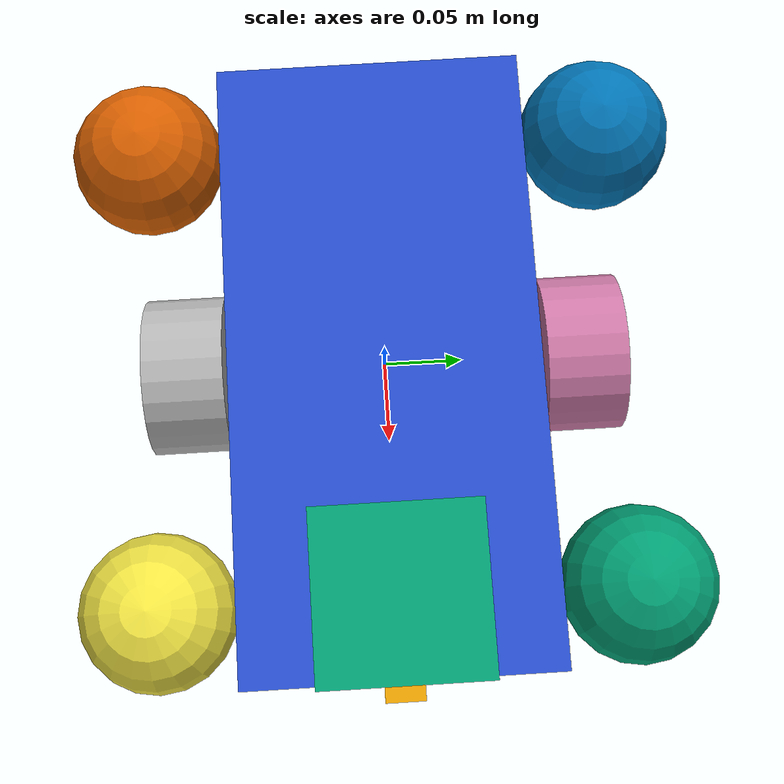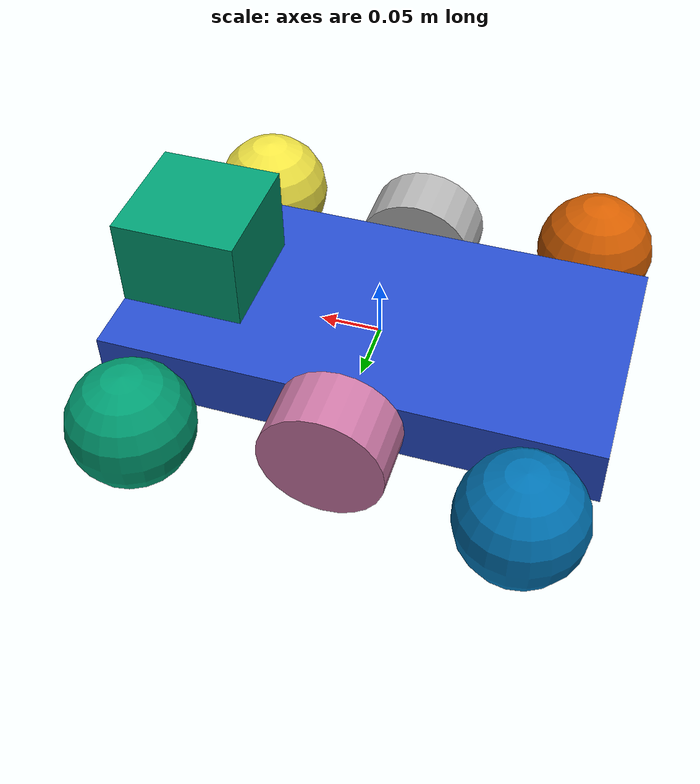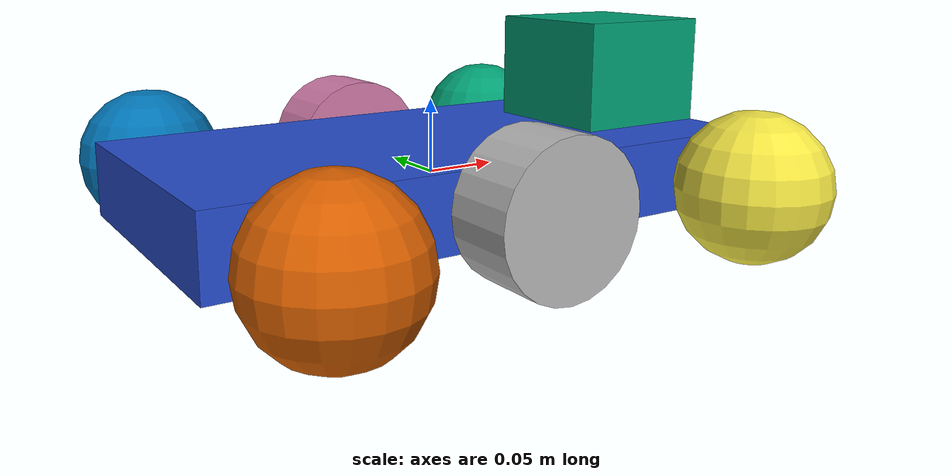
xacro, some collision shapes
<?xml version='1.0'?>

<robot name="my_robot" xmlns:xacro="http://www.ros.org/wiki/xacro">
  <xacro:include filename="$(find my_robot)/urdf/my_robot.gazebo" />

  <link name="robot_footprint"></link>

  <joint name="robot_footprint_joint" type="fixed">
    <origin xyz="0 0 0" rpy="0 0 0" />
    <parent link="robot_footprint"/>
    <child link="chassis" />
  </joint>

  <link name='chassis'>
    <pose>0 0 0.1 0 0 0</pose>

    <inertial>
      <mass value="10.0"/>
      <origin xyz="0.0 0 0" rpy=" 0 0 0"/>
      <inertia
          ixx="0.1" ixy="0" ixz="0"
          iyy="0.1" iyz="0"
          izz="0.1"
      />
    </inertial>

    <collision name='collision'>
      <origin xyz="0 0 0" rpy=" 0 0 0"/>
      <geometry>
        <box size=".4 .2 .05"/>
      </geometry>
    </collision>

    <visual name='chassis_visual'>
      <origin xyz="0 0 0" rpy=" 0 0 0"/>
      <geometry>
        <box size=".4 .2 .05"/>
      </geometry>
    </visual>
  </link>

  <joint type="continuous" name="left_front">
    <origin xyz="0.15 0.15 0" rpy="0 0 0"/>
    <child link="left_front_wheel_passive"/>
    <parent link="chassis"/>
    <axis xyz="0 1 0" rpy="0 0 0"/>
    <limit effort="10000" velocity="1000"/>
    <dynamics damping="1.0" friction="1.0"/>
  </joint>

  <link name='left_front_wheel_passive'>
     <inertial>
      <mass value="1.0"/>
      <origin xyz="0 0 0" rpy=" 0 0 0"/>
      <inertia
          ixx="0.1" ixy="0" ixz="0"
          iyy="0.1" iyz="0"
          izz="0.1"
      />
    </inertial>

    <collision name='lfwp_collision'>
      <origin xyz="0 0 0" rpy="0 0 0"/>
      <geometry>
        <sphere radius="0.05"/>
      </geometry>
    </collision>

    <visual name='lfwp_visual'>
      <origin xyz="0 0 0" rpy="0 0 0"/>
      <geometry>
        <sphere radius="0.05"/>
      </geometry>
    </visual>
  </link>

  <joint type="continuous" name="right_front">
    <origin xyz="0.15 -0.15 0" rpy="0 0 0"/>
    <child link="right_front_wheel_passive"/>
    <parent link="chassis"/>
    <axis xyz="0 1 0" rpy="0 0 0"/>
    <limit effort="10000" velocity="1000"/>
    <dynamics damping="1.0" friction="1.0"/>
  </joint>

  <link name='right_front_wheel_passive'>
     <inertial>
      <mass value="1.0"/>
      <origin xyz="0 0 0" rpy=" 0 0 0"/>
      <inertia
          ixx="0.1" ixy="0" ixz="0"
          iyy="0.1" iyz="0"
          izz="0.1"
      />
    </inertial>

    <collision name='rfwp_collision'>
      <origin xyz="0 0 0" rpy="0 0 0"/>
      <geometry>
        <sphere radius="0.05"/>
      </geometry>
    </collision>

    <visual name='rfwp_visual'>
      <origin xyz="0 0 0" rpy="0 0 0"/>
      <geometry>
        <sphere radius="0.05"/>
      </geometry>
    </visual>
  </link>

  <joint type="continuous" name="left_rear">
    <origin xyz="-0.15 0.15 0" rpy="0 0 0"/>
    <child link="left_rear_wheel_passive"/>
    <parent link="chassis"/>
    <axis xyz="0 1 0" rpy="0 0 0"/>
    <limit effort="10000" velocity="1000"/>
    <dynamics damping="1.0" friction="1.0"/>
  </joint>

  <link name='left_rear_wheel_passive'>
     <inertial>
      <mass value="1.0"/>
      <origin xyz="0 0 0" rpy=" 0 0 0"/>
      <inertia
          ixx="0.1" ixy="0" ixz="0"
          iyy="0.1" iyz="0"
          izz="0.1"
      />
    </inertial>

    <collision name='lrwp_collision'>
      <origin xyz="0 0 0" rpy="0 0 0"/>
      <geometry>
        <sphere radius="0.05"/>
      </geometry>
    </collision>

    <visual name='lrwp_visual'>
      <origin xyz="0 0 0" rpy="0 0 0"/>
      <geometry>
        <sphere radius="0.05"/>
      </geometry>
    </visual>
  </link>

  <joint type="continuous" name="right_rear">
    <origin xyz="-0.15 -0.15 0" rpy="0 0 0"/>
    <child link="right_rear_wheel_passive"/>
    <parent link="chassis"/>
    <axis xyz="0 1 0" rpy="0 0 0"/>
    <limit effort="10000" velocity="1000"/>
    <dynamics damping="1.0" friction="1.0"/>
  </joint>

  <link name='right_rear_wheel_passive'>
     <inertial>
      <mass value="1.0"/>
      <origin xyz="0 0 0" rpy=" 0 0 0"/>
      <inertia
          ixx="0.1" ixy="0" ixz="0"
          iyy="0.1" iyz="0"
          izz="0.1"
      />
    </inertial>

    <collision name='rrwp_collision'>
      <origin xyz="0 0 0" rpy="0 0 0"/>
      <geometry>
        <sphere radius="0.05"/>
      </geometry>
    </collision>

    <visual name='rrwp_visual'>
      <origin xyz="0 0 0" rpy="0 0 0"/>
      <geometry>
        <sphere radius="0.05"/>
      </geometry>
    </visual>
  </link>

  <joint type="continuous" name="left_drive">
    <origin xyz="0 0.125 0" rpy="0 0 0"/>
    <child link="left_mid_wheel_drive"/>
    <parent link="chassis"/>
    <axis xyz="0 1 0" rpy="0 0 0"/>
    <limit effort="10000" velocity="1000"/>
    <dynamics damping="1.0" friction="1.0"/>
  </joint>

  <link name='left_mid_wheel_drive'>
     <inertial>
      <mass value="5.0"/>
      <origin xyz="0 0 0" rpy=" 0 0 0"/>
      <inertia
          ixx="0.1" ixy="0" ixz="0"
          iyy="0.1" iyz="0"
          izz="0.1"
      />
    </inertial>

    <collision name='lmwd_collision'>
      <origin xyz="0 0 0" rpy="1.5707 0 0"/>
      <geometry>
        <cylinder radius="0.05" length="0.05"/>
      </geometry>
    </collision>

    <visual name='lmwd_visual'>
      <origin xyz="0 0 0" rpy="1.5707 0 0"/>
      <geometry>
        <cylinder radius="0.05" length="0.05"/>
      </geometry>
    </visual>
  </link>

  <joint type="continuous" name="right_drive">
    <origin xyz="0 -0.125 0" rpy="0 0 0"/>
    <child link="right_mid_wheel_drive"/>
    <parent link="chassis"/>
    <axis xyz="0 1 0" rpy="0 0 0"/>
    <limit effort="10000" velocity="1000"/>
    <dynamics damping="1.0" friction="1.0"/>
  </joint>

  <link name='right_mid_wheel_drive'>
     <inertial>
      <mass value="5.0"/>
      <origin xyz="0 0 0" rpy=" 0 0 0"/>
      <inertia
          ixx="0.1" ixy="0" ixz="0"
          iyy="0.1" iyz="0"
          izz="0.1"
      />
    </inertial>

    <collision name='rmwd_collision'>
      <origin xyz="0 0 0" rpy="1.5707 0 0"/>
      <geometry>
        <cylinder radius="0.05" length="0.05"/>
      </geometry>
    </collision>

    <visual name='rmwd_visual'>
      <origin xyz="0 0 0" rpy="1.5707 0 0"/>
      <geometry>
        <cylinder radius="0.05" length="0.05"/>
      </geometry>
    </visual>
  </link>

  <link name='camera'>
    <inertial>
      <mass value="0.1"/>
      <origin xyz="0 0 0" rpy=" 0 0 0"/>
      <inertia
          ixx="1e-6" ixy="0" ixz="0"
          iyy="1e-6" iyz="0"
          izz="1e-6"
      />
    </inertial>

    <collision name="camera_collision">
      <origin xyz="0 0 0" rpy="0 0 0"/>
      <geometry>
        <box size="0.025 0.025 0.025"/>
      </geometry>
    </collision>

    <visual name='camera_visual'>
      <origin xyz="0 0 0" rpy="0 0 0"/>
      <geometry>
        <box size="0.025 0.025 0.025"/>
      </geometry>
    </visual>
  </link>

  <joint type="fixed" name="camera">
    <origin xyz="0.2 0 0" rpy="0 0 0"/>
    <child link="camera"/>
    <parent link="chassis"/>
    <axis xyz="0 1 0" rpy="0 0 0"/>
  </joint>

  <joint name="camera_optical_joint" type="fixed">
    <origin xyz="0 0 0" rpy="0 0 0"/>
    <parent link="camera"/>
    <child link="camera_link_optical"/>
  </joint>

  <link name="camera_link_optical">
  </link>

  <link name='hokuyo'>
    <inertial>
      <mass value="1e-5"/>
      <origin xyz="0 0 0" rpy=" 0 0 0"/>
      <inertia
          ixx="1e-6" ixy="0" ixz="0"
          iyy="1e-6" iyz="0"
          izz="1e-6"
      />
    </inertial>

    <collision name="hokuyo_collision">
      <origin xyz="0 0 0" rpy="0 0 0"/>
      <geometry>
        <box size="0.1 0.1 0.1"/>
      </geometry>
    </collision>

    <visual name='hokuyo_visual'>
      <origin xyz="0 0 0" rpy="0 0 0"/>
      <geometry>
        <mesh filename="package://my_robot/meshes/hokuyo.dae"/>
      </geometry>
    </visual>
  </link>

  <joint type="fixed" name="hokuyo_joint">
    <origin xyz="0.15 0 0.05" rpy="0 0 0"/>
    <child link="hokuyo"/>
    <parent link="chassis"/>
    <axis xyz="0 1 0" rpy="0 0 0"/>
  </joint>

</robot>
